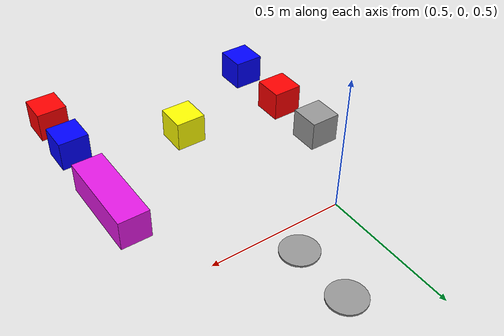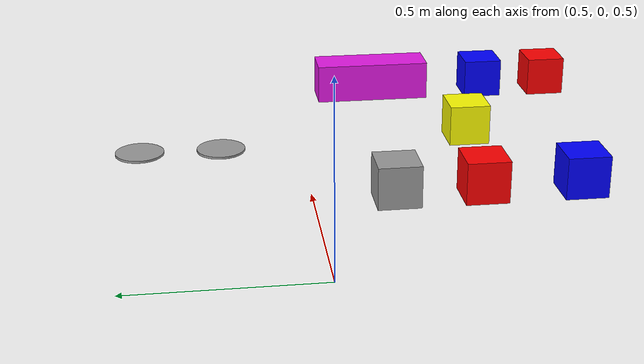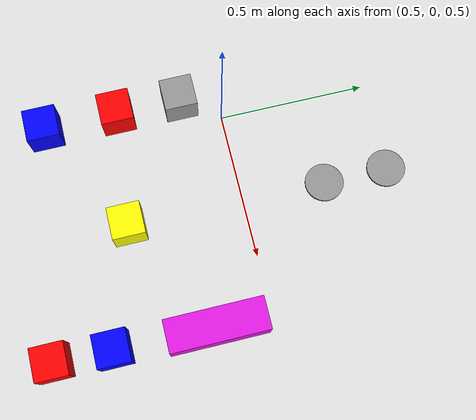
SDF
<sdf version="1.7">
 <world name="default">
  <plugin name="ros_link_attacher_plugin" filename="libgazebo_ros_link_attacher.so"/>
  <model name="set_camera_pose_model">
   <link name="link">
    <visual name="visual"><plugin name="CameraSimPlugin" filename="libCameraLockPlugin.so"/></visual>
   </link>
  </model>
  <light name="sun" type="directional">
   <pose>0 0 10 0 -0 0</pose>
   <diffuse>0.8 0.8 0.8 1</diffuse>
   <specular>0.2 0.2 0.2 1</specular>
   <attenuation>
    <range>1000</range>
    <constant>0.9</constant>
    <linear>0.01</linear>
    <quadratic>0.001</quadratic>
   </attenuation>
   <direction>-0.5 0.1 -0.9</direction>
   <spot><inner_angle>0</inner_angle><outer_angle>0</outer_angle><falloff>0</falloff></spot>
  </light>
  <gravity>0 0 -9.8</gravity>
  <magnetic_field>6e-06 2.3e-05 -4.2e-05</magnetic_field>
  <atmosphere type="adiabatic"/>
  <physics type="ode">
   <max_step_size>0.001</max_step_size>
   <real_time_factor>1</real_time_factor>
   <real_time_update_rate>2000</real_time_update_rate>
  </physics>
  <scene><ambient>0.4 0.4 0.4 1</ambient><background>0.7 0.7 0.7 1</background><shadows>1</shadows></scene>
  <spherical_coordinates>
   <surface_model>EARTH_WGS84</surface_model>
   <latitude_deg>0</latitude_deg>
   <longitude_deg>0</longitude_deg>
   <elevation>0</elevation>
   <heading_deg>0</heading_deg>
  </spherical_coordinates>
  <light name="user_spot_light_0" type="spot">
   <pose>0.86 0.0 5 0 -0 0</pose>
   <diffuse>0.5 0.5 0.5 1</diffuse>
   <specular>0.1 0.1 0.1 1</specular>
   <direction>0 0 -1</direction>
   <attenuation>
    <range>20</range>
    <constant>0.3</constant>
    <linear>0.01</linear>
    <quadratic>0.001</quadratic>
   </attenuation>
   <cast_shadows>0</cast_shadows>
   <spot><inner_angle>0.6</inner_angle><outer_angle>4.0</outer_angle><falloff>1</falloff></spot>
  </light>
  <model name="cube_r">
   <link name="link">
    <inertial>
     <mass>0.00001</mass>
     <inertia><ixx>0.00001</ixx><ixy>0</ixy><ixz>0</ixz><iyy>0.00001</iyy><iyz>0</iyz><izz>0.00001</izz></inertia>
    </inertial>
    <gravity>0</gravity>
    <visual name="visual">
     <geometry><box><size>0.1 0.1 0.1</size></box></geometry>
     <material>
      <lighting>1</lighting>
      <script><uri>file://media/materials/scripts/gazebo.material</uri><name>Gazebo/Grey</name></script>
      <shader type="pixel"><normal_map>__default__</normal_map></shader>
      <ambient>1 0 0 1</ambient>
      <diffuse>0.7 0.7 0.7 1</diffuse>
      <specular>0.01 0.01 0.01 1</specular>
      <emissive>0 0 0 1</emissive>
     </material>
    </visual>
   </link>
   <static>0</static>
   <pose>1.20994 -0.674646 0.75 0 -0 0</pose>
  </model>
  <model name="cube_r_R">
   <link name="link">
    <inertial>
     <mass>0.00001</mass>
     <inertia><ixx>0.00001</ixx><ixy>0</ixy><ixz>0</ixz><iyy>0.00001</iyy><iyz>0</iyz><izz>0.00001</izz></inertia>
    </inertial>
    <gravity>0</gravity>
    <visual name="visual">
     <geometry><box><size>0.1 0.1 0.1</size></box></geometry>
     <material>
      <lighting>1</lighting>
      <script><uri>file://media/materials/scripts/gazebo.material</uri><name>Gazebo/Grey</name></script>
      <shader type="pixel"><normal_map>__default__</normal_map></shader>
      <ambient>1 0 0 1</ambient>
      <diffuse>0.7 0.7 0.7 1</diffuse>
      <specular>0.01 0.01 0.01 1</specular>
      <emissive>0 0 0 1</emissive>
     </material>
    </visual>
   </link>
   <static>0</static>
   <pose>0.5 -0.34 0.75 0 -0 0</pose>
  </model>
  <model name="cube_b">
   <link name="link">
    <inertial>
     <mass>1</mass>
     <inertia>
      <ixx>0.166667</ixx>
      <ixy>0</ixy>
      <ixz>0</ixz>
      <iyy>0.166667</iyy>
      <iyz>0</iyz>
      <izz>0.166667</izz>
     </inertia>
    </inertial>
    <gravity>0</gravity>
    <visual name="visual">
     <geometry><box><size>0.1 0.1 0.1</size></box></geometry>
     <material>
      <script><name>Gazebo/Grey</name><uri>file://media/materials/scripts/gazebo.material</uri></script>
      <shader type="pixel"><normal_map>__default__</normal_map></shader>
      <ambient>0 0 1 1</ambient>
      <diffuse>0 0 1 1</diffuse>
      <specular>0.1 0.1 0.1 1</specular>
      <emissive>0 0 0 1</emissive>
     </material>
    </visual>
   </link>
   <static>0</static>
   <pose>1.2141 -0.496866 0.75 0 -0 0</pose>
  </model>
  <model name="cube_b_R">
   <link name="link">
    <inertial>
     <mass>1</mass>
     <inertia>
      <ixx>0.166667</ixx>
      <ixy>0</ixy>
      <ixz>0</ixz>
      <iyy>0.166667</iyy>
      <iyz>0</iyz>
      <izz>0.166667</izz>
     </inertia>
    </inertial>
    <gravity>0</gravity>
    <visual name="visual">
     <geometry><box><size>0.1 0.1 0.1</size></box></geometry>
     <material>
      <script><name>Gazebo/Grey</name><uri>file://media/materials/scripts/gazebo.material</uri></script>
      <shader type="pixel"><normal_map>__default__</normal_map></shader>
      <ambient>0 0 1 1</ambient>
      <diffuse>0 0 1 1</diffuse>
      <specular>0.1 0.1 0.1 1</specular>
      <emissive>0 0 0 1</emissive>
     </material>
    </visual>
   </link>
   <static>0</static>
   <pose>0.5 -0.57 0.75 0 -0 0</pose>
  </model>
  <model name="cube_w">
   <link name="link">
    <inertial>
     <mass>1</mass>
     <inertia>
      <ixx>0.166667</ixx>
      <ixy>0</ixy>
      <ixz>0</ixz>
      <iyy>0.166667</iyy>
      <iyz>0</iyz>
      <izz>0.166667</izz>
     </inertia>
    </inertial>
    <gravity>0</gravity>
    <visual name="visual">
     <geometry><box><size>0.1 0.1 0.1</size></box></geometry>
     <material>
      <lighting>1</lighting>
      <script><uri>file://media/materials/scripts/gazebo.material</uri><name>Gazebo/Grey</name></script>
      <shader type="pixel"><normal_map>__default__</normal_map></shader>
      <ambient>1 1 1 1</ambient>
      <diffuse>0.7 0.7 0.7 1</diffuse>
      <specular>0.01 0.01 0.01 1</specular>
      <emissive>0 0 0 1</emissive>
     </material>
    </visual>
   </link>
   <static>0</static>
   <pose>0.5 -0.14 0.75 0 -0 0</pose>
  </model>
  <model name="cube_p">
   <link name="link">
    <inertial>
     <mass>1</mass>
     <inertia>
      <ixx>0.166667</ixx>
      <ixy>0</ixy>
      <ixz>0</ixz>
      <iyy>0.166667</iyy>
      <iyz>0</iyz>
      <izz>0.166667</izz>
     </inertia>
    </inertial>
    <gravity>0</gravity>
    <visual name="visual">
     <geometry><box><size>0.1 0.3 0.1</size></box></geometry>
     <material>
      <lighting>1</lighting>
      <script><uri>file://media/materials/scripts/gazebo.material</uri><name>Gazebo/Grey</name></script>
      <shader type="pixel"><normal_map>__default__</normal_map></shader>
      <ambient>0.9 0.1 0.9 1</ambient>
      <diffuse>0.7 0.7 0.7 1</diffuse>
      <specular>0.01 0.01 0.01 1</specular>
      <emissive>0 0 0 1</emissive>
     </material>
    </visual>
   </link>
   <static>0</static>
   <pose>1.22 -0.19 0.75 0 -0 0</pose>
  </model>
  <model name="cube_y">
   <link name="link">
    <inertial>
     <mass>1</mass>
     <inertia>
      <ixx>0.166667</ixx>
      <ixy>0</ixy>
      <ixz>0</ixz>
      <iyy>0.166667</iyy>
      <iyz>0</iyz>
      <izz>0.166667</izz>
     </inertia>
    </inertial>
    <gravity>0</gravity>
    <visual name="visual">
     <geometry><box><size>0.1 0.1 0.1</size></box></geometry>
     <material>
      <lighting>1</lighting>
      <script><uri>file://media/materials/scripts/gazebo.material</uri><name>Gazebo/Grey</name></script>
      <shader type="pixel"><normal_map>__default__</normal_map></shader>
      <ambient>1 1 0 1</ambient>
      <diffuse>0.7 0.7 0.7 1</diffuse>
      <specular>0.01 0.01 0.01 1</specular>
      <emissive>0 0 0 1</emissive>
     </material>
    </visual>
   </link>
   <static>0</static>
   <pose>0.86 -0.38 0.75 0 -0 0</pose>
  </model>
  <model name="table_slot">
   <link name="link">
    <inertial>
     <mass>1</mass>
     <inertia><ixx>0.145833</ixx><ixy>0</ixy><ixz>0</ixz><iyy>0.145833</iyy><iyz>0</iyz><izz>0.125</izz></inertia>
    </inertial>
    <gravity>0</gravity>
    <visual name="visual">
     <geometry><cylinder><radius>0.06</radius><length>0.005709</length></cylinder></geometry>
     <material>
      <script><name>Gazebo/Grey</name><uri>file://media/materials/scripts/gazebo.material</uri></script>
      <shader type="pixel"><normal_map>__default__</normal_map></shader>
      <diffuse>0.5 0.5 0.5 1</diffuse>
      <ambient>0.3 0.3 0.3 1</ambient>
      <specular>0.01 0.01 0.01 1</specular>
      <emissive>0 0 0 1</emissive>
     </material>
    </visual>
   </link>
   <static>0</static>
   <pose>0.86 0.24 0.7 0 -0 0</pose>
  </model>
  <model name="table_slot_0">
   <link name="link">
    <inertial>
     <mass>1</mass>
     <inertia><ixx>0.145833</ixx><ixy>0</ixy><ixz>0</ixz><iyy>0.145833</iyy><iyz>0</iyz><izz>0.125</izz></inertia>
    </inertial>
    <gravity>0</gravity>
    <visual name="visual">
     <geometry><cylinder><radius>0.06</radius><length>0.005709</length></cylinder></geometry>
     <material>
      <script><name>Gazebo/Grey</name><uri>file://media/materials/scripts/gazebo.material</uri></script>
      <shader type="pixel"><normal_map>__default__</normal_map></shader>
      <diffuse>0.5 0.5 0.5 1</diffuse>
      <ambient>0.3 0.3 0.3 1</ambient>
      <specular>0.01 0.01 0.01 1</specular>
      <emissive>0 0 0 1</emissive>
     </material>
    </visual>
   </link>
   <static>0</static>
   <pose>0.86 0.44 0.7 0 -0 0</pose>
  </model>
 </world>
</sdf>
